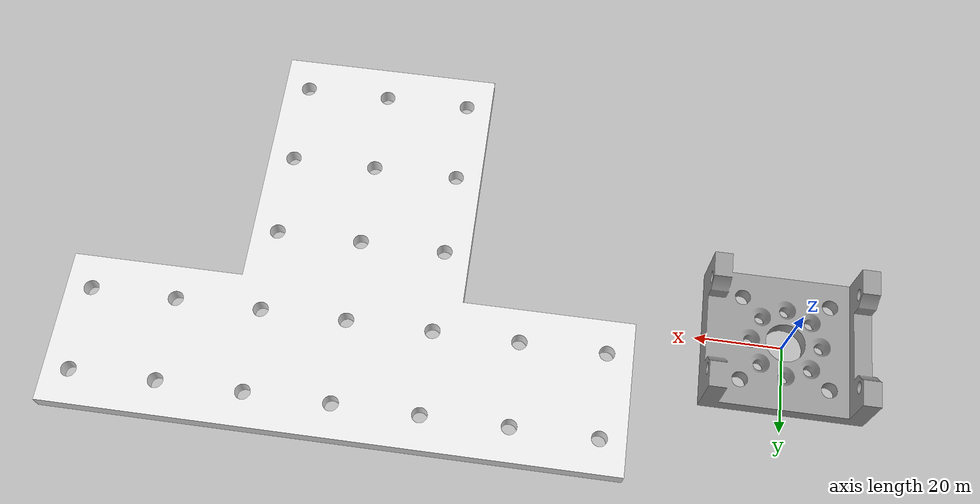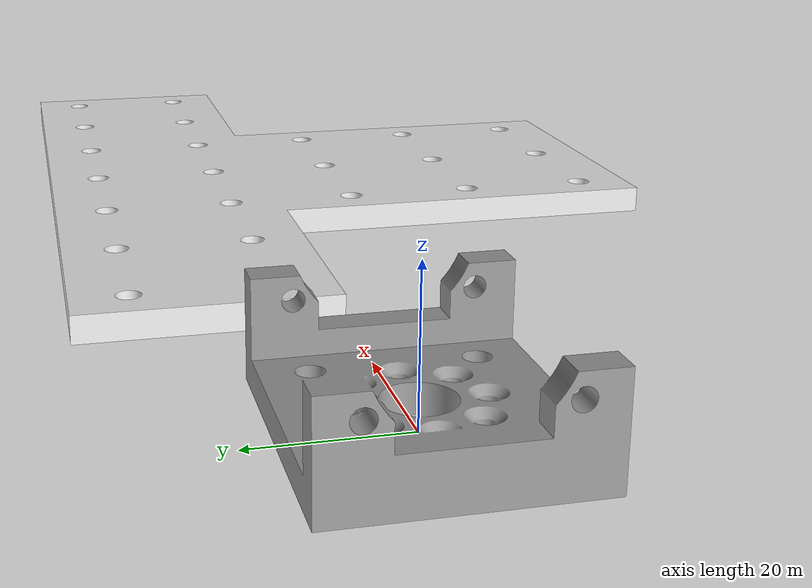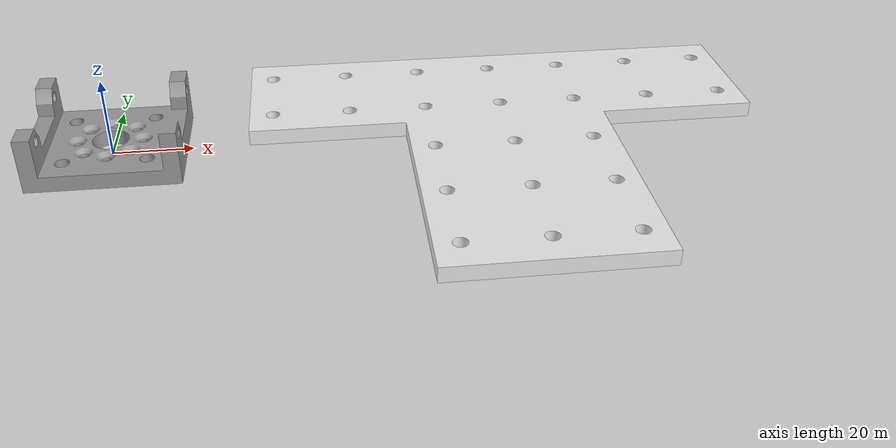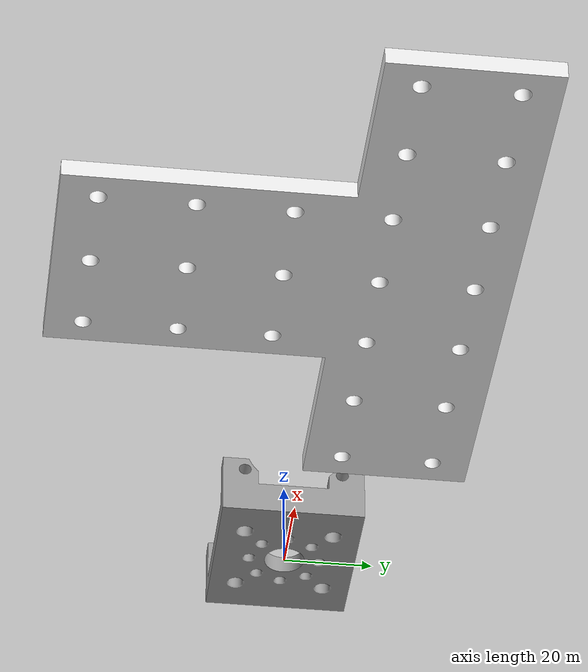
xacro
<?xml version="1.0"?>
<robot xmlns:xacro="http://www.ros.org/wiki/xacro" name="my_robot">
    <xacro:property name="effort"   value="30.0"/>
    <xacro:property name="velocity" value="10.0"/>

    <xacro:property name="servo_x" value="0.0285"/>
    <xacro:property name="servo_y" value="0.0465"/>
    <xacro:property name="servo_z" value="0.034"/>

    <link name="base_link">
        <visual>
            <geometry>
                <mesh filename="package://my_robot_description/mesh/CADv0/_mod_basePlate-Body.stl" scale="1.0 1.0 1.0"/>
            </geometry>
            <origin xyz="0 0 0" rpy="0 0 0"/>
            <material name="white"/>
        </visual>
        <collision>
            <geometry>
                <mesh filename="package://my_robot_description/mesh/CADv0/_mod_basePlate-Body.stl" scale="1.0 1.0 1.0"/>
            </geometry>
            <origin xyz="0 0 -0.002" rpy="0 0 0"/>
        </collision>
        <xacro:lazy_inertia m="1.0"/>
    </link>

    <link name="servo1_holder">
        <visual>
            <geometry>
                <mesh filename="package://my_robot_description/mesh/CADv0/_mod_XL-430holderBasic-Body.stl" scale="1.0 1.0 1.0"/>
            </geometry>
            <material name="grey"/>
            <origin xyz="0 0 0" rpy="0 0 0"/>
        </visual>
        <collision>
            <geometry>
                <mesh filename="package://my_robot_description/mesh/CADv0/_mod_XL-430holderBasic-Body.stl" scale="1.0 1.0 1.0"/>
            </geometry>
            <origin xyz="0 0 -0.007" rpy="0 0 0"/>
        </collision>
        <xacro:box_inertia m="0.01" x="0.037" y="0.032" z="0.014" o_xyz="0 0 -0.01" o_rpy="0 0 0"/>
    </link>
    <joint name="base_link_servo1_holder" type="fixed">
        <parent link="base_link"/>
        <child  link="servo1_holder"/>
        <origin xyz="0 0 0" rpy="0 0 0"/>
    </joint>

</robot>
